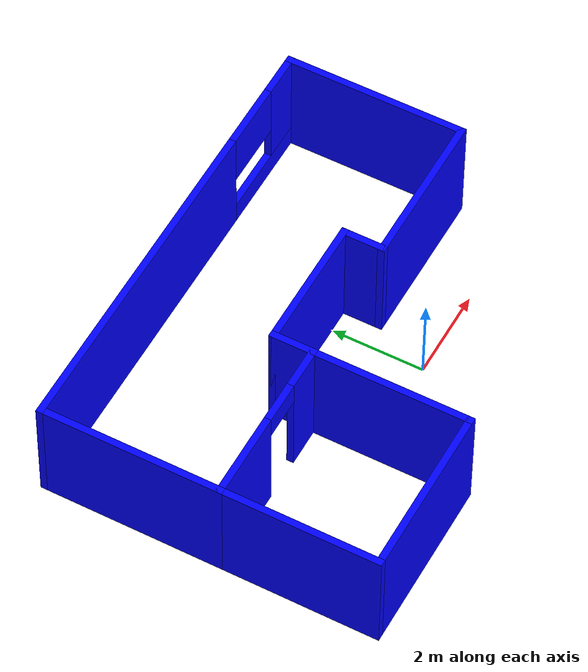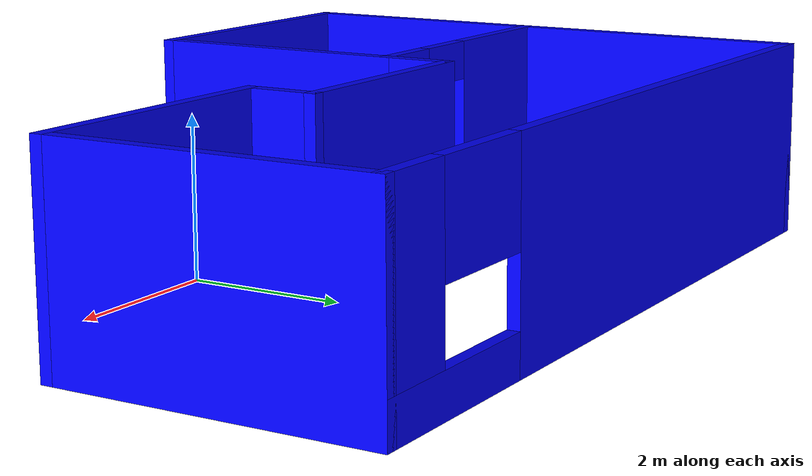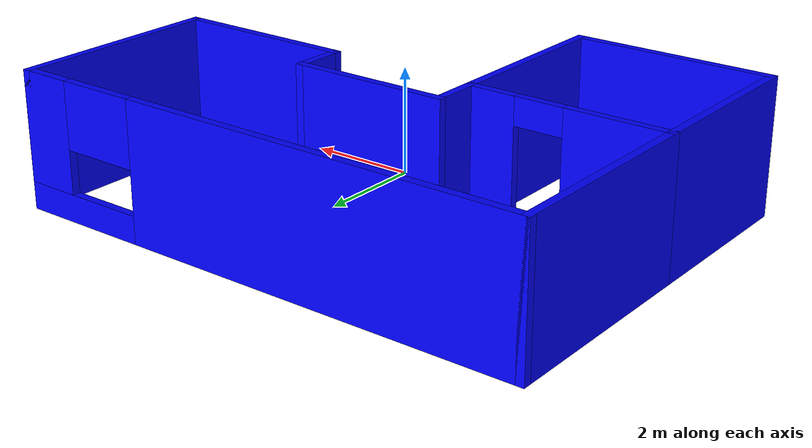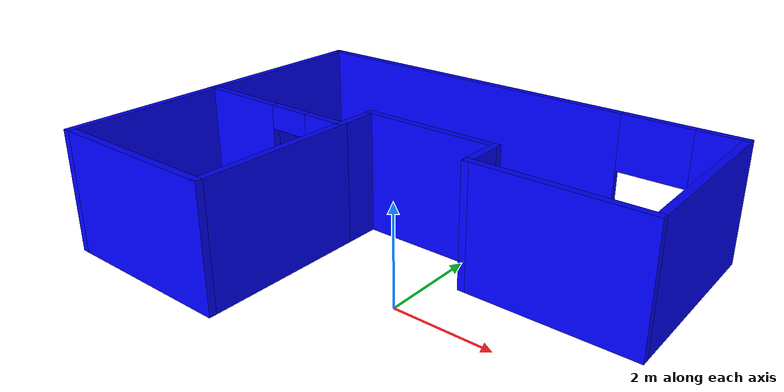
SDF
<?xml version='1.0'?>
<sdf version='1.6'>
  <model name='model'>
    <pose frame=''>-1.015 1.5 0 0 -0 0</pose>
    <link name='Wall_15'>
      <collision name='Wall_15_Collision'>
        <geometry>
          <box>
            <size>4 0.15 2.5</size>
          </box>
        </geometry>
        <pose frame=''>0 0 1.25 0 -0 0</pose>
      </collision>
      <visual name='Wall_15_Visual'>
        <pose frame=''>0 0 1.25 0 -0 0</pose>
        <geometry>
          <box>
            <size>4 0.15 2.5</size>
          </box>
        </geometry>
        <material>
          <script>
            <uri>file://media/materials/scripts/gazebo.material</uri>
            <name>Gazebo/Grey</name>
          </script>
          <ambient>0 0 1 1</ambient>
        </material>
        <meta>
          <layer>0</layer>
        </meta>
      </visual>
      <pose frame=''>-4.925 1.675 0 0 0 -1.5708</pose>
    </link>
    <link name='Wall_16'>
      <pose frame=''>-3.1 -0.25 0 0 -0 0</pose>
      <visual name='Wall_16_Visual_0'>
        <pose frame=''>-0.93552 0 1.25 0 -0 0</pose>
        <geometry>
          <box>
            <size>1.92896 0.15 2.5</size>
          </box>
        </geometry>
        <material>
          <script>
            <uri>file://media/materials/scripts/gazebo.material</uri>
            <name>Gazebo/Grey</name>
          </script>
          <ambient>0 0 1 1</ambient>
        </material>
        <meta>
          <layer>0</layer>
        </meta>
      </visual>
      <collision name='Wall_16_Collision_0'>
        <geometry>
          <box>
            <size>1.92896 0.15 2.5</size>
          </box>
        </geometry>
        <pose frame=''>-0.93552 0 1.25 0 -0 0</pose>
      </collision>
      <visual name='Wall_16_Visual_1'>
        <pose frame=''>1.41448 0 1.25 0 -0 0</pose>
        <geometry>
          <box>
            <size>0.971041 0.15 2.5</size>
          </box>
        </geometry>
        <material>
          <script>
            <uri>file://media/materials/scripts/gazebo.material</uri>
            <name>Gazebo/Grey</name>
          </script>
          <ambient>0 0 1 1</ambient>
        </material>
        <meta>
          <layer>0</layer>
        </meta>
      </visual>
      <collision name='Wall_16_Collision_1'>
        <geometry>
          <box>
            <size>0.971041 0.15 2.5</size>
          </box>
        </geometry>
        <pose frame=''>1.41448 0 1.25 0 -0 0</pose>
      </collision>
      <visual name='Wall_16_Visual_2'>
        <pose frame=''>0.478959 0 2.25 0 -0 0</pose>
        <geometry>
          <box>
            <size>0.9 0.15 0.5</size>
          </box>
        </geometry>
        <material>
          <script>
            <uri>file://media/materials/scripts/gazebo.material</uri>
            <name>Gazebo/Grey</name>
          </script>
          <ambient>0 0 1 1</ambient>
        </material>
        <meta>
          <layer>0</layer>
        </meta>
      </visual>
      <collision name='Wall_16_Collision_2'>
        <geometry>
          <box>
            <size>0.9 0.15 0.5</size>
          </box>
        </geometry>
        <pose frame=''>0.478959 0 2.25 0 -0 0</pose>
      </collision>
    </link>
    <link name='Wall_19'>
      <collision name='Wall_19_Collision'>
        <geometry>
          <box>
            <size>3.5 0.15 2.5</size>
          </box>
        </geometry>
        <pose frame=''>0 0 1.25 0 -0 0</pose>
      </collision>
      <visual name='Wall_19_Visual'>
        <pose frame=''>0 0 1.25 0 -0 0</pose>
        <geometry>
          <box>
            <size>3.5 0.15 2.5</size>
          </box>
        </geometry>
        <material>
          <script>
            <uri>file://media/materials/scripts/gazebo.material</uri>
            <name>Gazebo/Grey</name>
          </script>
          <ambient>0 0 1 1</ambient>
        </material>
        <meta>
          <layer>0</layer>
        </meta>
      </visual>
      <pose frame=''>-4.925 -1.925 0 0 0 -1.5708</pose>
    </link>
    <link name='Wall_2'>
      <pose frame=''>0 3.6 0 0 -0 0</pose>
      <visual name='Wall_2_Visual_0'>
        <pose frame=''>-1.22752 0 1.25 0 -0 0</pose>
        <geometry>
          <box>
            <size>7.54496 0.15 2.5</size>
          </box>
        </geometry>
        <material>
          <script>
            <uri>file://media/materials/scripts/gazebo.material</uri>
            <name>Gazebo/Grey</name>
          </script>
          <ambient>0 0 1 1</ambient>
        </material>
        <meta>
          <layer>0</layer>
        </meta>
      </visual>
      <collision name='Wall_2_Collision_0'>
        <geometry>
          <box>
            <size>7.54496 0.15 2.5</size>
          </box>
        </geometry>
        <pose frame=''>-1.22752 0 1.25 0 -0 0</pose>
      </collision>
      <visual name='Wall_2_Visual_1'>
        <pose frame=''>3.77248 0 0.25 0 -0 0</pose>
        <geometry>
          <box>
            <size>2.45504 0.15 0.5</size>
          </box>
        </geometry>
        <material>
          <script>
            <uri>file://media/materials/scripts/gazebo.material</uri>
            <name>Gazebo/Grey</name>
          </script>
          <ambient>0 0 1 1</ambient>
        </material>
        <meta>
          <layer>0</layer>
        </meta>
      </visual>
      <collision name='Wall_2_Collision_1'>
        <geometry>
          <box>
            <size>2.45504 0.15 0.5</size>
          </box>
        </geometry>
        <pose frame=''>3.77248 0 0.25 0 -0 0</pose>
      </collision>
      <visual name='Wall_2_Visual_2'>
        <pose frame=''>4.50023 0 1.5 0 -0 0</pose>
        <geometry>
          <box>
            <size>0.999541 0.15 2</size>
          </box>
        </geometry>
        <material>
          <script>
            <uri>file://media/materials/scripts/gazebo.material</uri>
            <name>Gazebo/Grey</name>
          </script>
          <ambient>0 0 1 1</ambient>
        </material>
        <meta>
          <layer>0</layer>
        </meta>
      </visual>
      <collision name='Wall_2_Collision_2'>
        <geometry>
          <box>
            <size>0.999541 0.15 2</size>
          </box>
        </geometry>
        <pose frame=''>4.50023 0 1.5 0 -0 0</pose>
      </collision>
      <visual name='Wall_2_Visual_3'>
        <pose frame=''>3.27271 0 1.9 0 -0 0</pose>
        <geometry>
          <box>
            <size>1.4555 0.15 1.2</size>
          </box>
        </geometry>
        <material>
          <script>
            <uri>file://media/materials/scripts/gazebo.material</uri>
            <name>Gazebo/Grey</name>
          </script>
          <ambient>0 0 1 1</ambient>
        </material>
        <meta>
          <layer>0</layer>
        </meta>
      </visual>
      <collision name='Wall_2_Collision_3'>
        <geometry>
          <box>
            <size>1.4555 0.15 1.2</size>
          </box>
        </geometry>
        <pose frame=''>3.27271 0 1.9 0 -0 0</pose>
      </collision>
    </link>
    <link name='Wall_21'>
      <collision name='Wall_21_Collision'>
        <geometry>
          <box>
            <size>3.5 0.15 2.5</size>
          </box>
        </geometry>
        <pose frame=''>0 0 1.25 0 -0 0</pose>
      </collision>
      <visual name='Wall_21_Visual'>
        <pose frame=''>0 0 1.25 0 -0 0</pose>
        <geometry>
          <box>
            <size>3.5 0.15 2.5</size>
          </box>
        </geometry>
        <material>
          <script>
            <uri>file://media/materials/scripts/gazebo.material</uri>
            <name>Gazebo/Grey</name>
          </script>
          <ambient>0 0 1 1</ambient>
        </material>
        <meta>
          <layer>0</layer>
        </meta>
      </visual>
      <pose frame=''>-1.275 -1.925 0 0 0 -1.5708</pose>
    </link>
    <link name='Wall_22'>
      <collision name='Wall_22_Collision'>
        <geometry>
          <box>
            <size>3.75 0.15 2.5</size>
          </box>
        </geometry>
        <pose frame=''>0 0 1.25 0 -0 0</pose>
      </collision>
      <visual name='Wall_22_Visual'>
        <pose frame=''>0 0 1.25 0 -0 0</pose>
        <geometry>
          <box>
            <size>3.75 0.15 2.5</size>
          </box>
        </geometry>
        <material>
          <script>
            <uri>file://media/materials/scripts/gazebo.material</uri>
            <name>Gazebo/Grey</name>
          </script>
          <ambient>0 0 1 1</ambient>
        </material>
        <meta>
          <layer>0</layer>
        </meta>
      </visual>
      <pose frame=''>-3.075 -3.6 0 0 -0 3.14159</pose>
    </link>
    <link name='Wall_3'>
      <collision name='Wall_3_Collision'>
        <geometry>
          <box>
            <size>4 0.15 2.5</size>
          </box>
        </geometry>
        <pose frame=''>0 0 1.25 0 -0 0</pose>
      </collision>
      <visual name='Wall_3_Visual'>
        <pose frame=''>0 0 1.25 0 -0 0</pose>
        <geometry>
          <box>
            <size>4 0.15 2.5</size>
          </box>
        </geometry>
        <material>
          <script>
            <uri>file://media/materials/scripts/gazebo.material</uri>
            <name>Gazebo/Grey</name>
          </script>
          <ambient>0 0 1 1</ambient>
        </material>
        <meta>
          <layer>0</layer>
        </meta>
      </visual>
      <pose frame=''>4.925 1.675 0 0 0 -1.5708</pose>
    </link>
    <link name='Wall_4'>
      <collision name='Wall_4_Collision'>
        <geometry>
          <box>
            <size>3.5 0.15 2.5</size>
          </box>
        </geometry>
        <pose frame=''>0 0 1.25 0 -0 0</pose>
      </collision>
      <visual name='Wall_4_Visual'>
        <pose frame=''>0 0 1.25 0 -0 0</pose>
        <geometry>
          <box>
            <size>3.5 0.15 2.5</size>
          </box>
        </geometry>
        <material>
          <script>
            <uri>file://media/materials/scripts/gazebo.material</uri>
            <name>Gazebo/Grey</name>
          </script>
          <ambient>0 0 1 1</ambient>
        </material>
        <meta>
          <layer>0</layer>
        </meta>
      </visual>
      <pose frame=''>3.25 -0.25 0 0 -0 3.14159</pose>
    </link>
    <link name='Wall_5'>
      <collision name='Wall_5_Collision'>
        <geometry>
          <box>
            <size>1 0.15 2.5</size>
          </box>
        </geometry>
        <pose frame=''>0 0 1.25 0 -0 0</pose>
      </collision>
      <visual name='Wall_5_Visual'>
        <pose frame=''>0 0 1.25 0 -0 0</pose>
        <geometry>
          <box>
            <size>1 0.15 2.5</size>
          </box>
        </geometry>
        <material>
          <script>
            <uri>file://media/materials/scripts/gazebo.material</uri>
            <name>Gazebo/Grey</name>
          </script>
          <ambient>0 0 1 1</ambient>
        </material>
        <meta>
          <layer>0</layer>
        </meta>
      </visual>
      <pose frame=''>1.575 0.175 0 0 -0 1.5708</pose>
    </link>
    <link name='Wall_6'>
      <collision name='Wall_6_Collision'>
        <geometry>
          <box>
            <size>3 0.15 2.5</size>
          </box>
        </geometry>
        <pose frame=''>0 0 1.25 0 -0 0</pose>
      </collision>
      <visual name='Wall_6_Visual'>
        <pose frame=''>0 0 1.25 0 -0 0</pose>
        <geometry>
          <box>
            <size>3 0.15 2.5</size>
          </box>
        </geometry>
        <material>
          <script>
            <uri>file://media/materials/scripts/gazebo.material</uri>
            <name>Gazebo/Grey</name>
          </script>
          <ambient>0 0 1 1</ambient>
        </material>
        <meta>
          <layer>0</layer>
        </meta>
      </visual>
      <pose frame=''>0.15 0.6 0 0 -0 3.14159</pose>
    </link>
    <link name='Wall_7'>
      <collision name='Wall_7_Collision'>
        <geometry>
          <box>
            <size>1 0.15 2.5</size>
          </box>
        </geometry>
        <pose frame=''>0 0 1.25 0 -0 0</pose>
      </collision>
      <visual name='Wall_7_Visual'>
        <pose frame=''>0 0 1.25 0 -0 0</pose>
        <geometry>
          <box>
            <size>1 0.15 2.5</size>
          </box>
        </geometry>
        <material>
          <script>
            <uri>file://media/materials/scripts/gazebo.material</uri>
            <name>Gazebo/Grey</name>
          </script>
          <ambient>0 0 1 1</ambient>
        </material>
        <meta>
          <layer>0</layer>
        </meta>
      </visual>
      <pose frame=''>-1.275 0.175 0 0 0 -1.5708</pose>
    </link>
    <static>1</static>
  </model>
</sdf>
